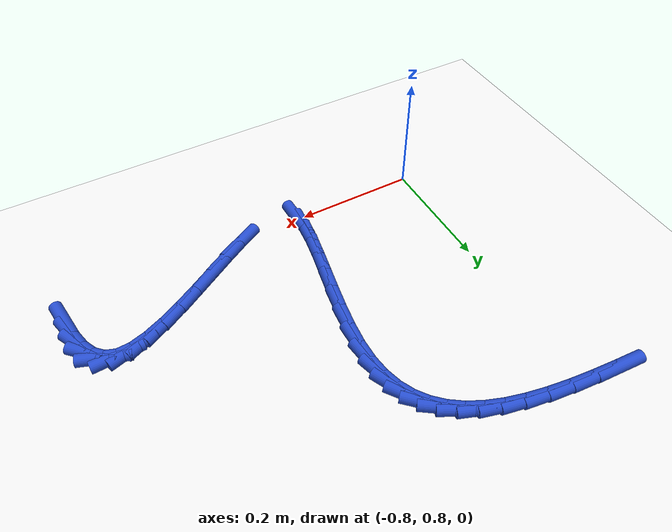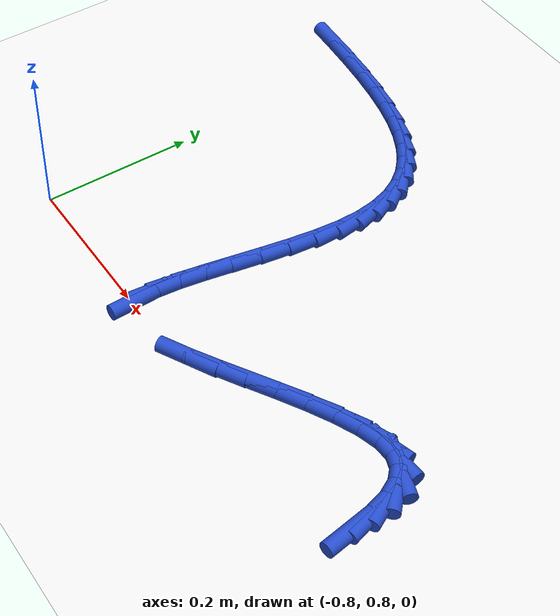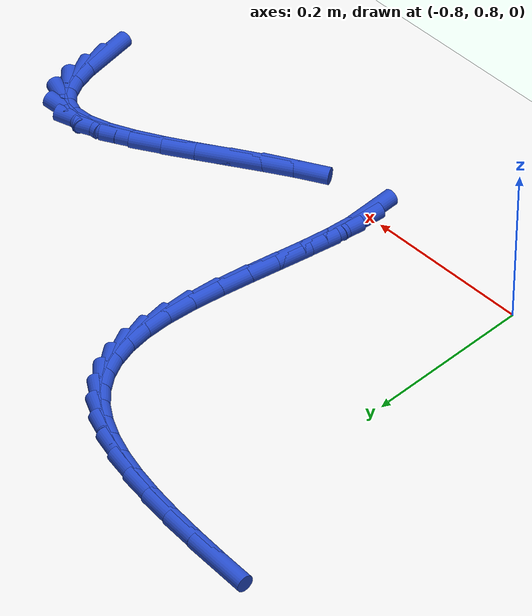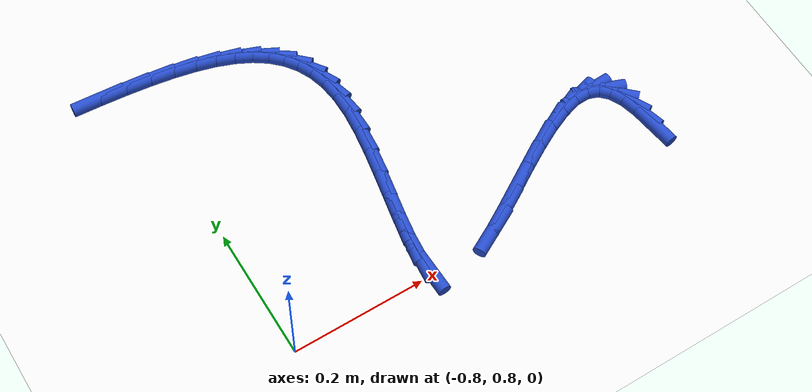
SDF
<sdf version="1.6">
 <world name="default">
  <model name="ground_plane">
   <static>1</static>
   <link name="link">
    <collision name="collision">
     <geometry><plane><normal>0 0 1</normal><size>100 100</size></plane></geometry>
     <surface><friction><ode><mu>100</mu><mu2>50</mu2></ode></friction></surface>
    </collision>
    <visual name="visual">
     <cast_shadows>0</cast_shadows>
     <geometry><plane><normal>0 0 1</normal><size>100 100</size></plane></geometry>
     <material>
      <script><uri>file://media/materials/scripts/gazebo.material</uri><name>Gazebo/WhiteGlow</name></script>
     </material>
    </visual>
   </link>
  </model>
  <model name="line">
   <link name="link_27">
    <pose>-0.18924707693657783 0.8349842434299994 0.01 0 1.57 -1.4235620301760807</pose>
    <collision name="collision">
     <geometry><cylinder><radius>0.01</radius><length>0.08</length></cylinder></geometry>
    </collision>
    <visual name="visual">
     <material>
      <script><name>Gazebo/Blue</name><uri>file://media/materials/scripts/gazebo.material</uri></script>
     </material>
     <geometry><cylinder><radius>0.01</radius><length>0.08</length></cylinder></geometry>
    </visual>
   </link>
   <link name="link_28">
    <pose>-0.19346652162865705 0.8634348898714073 0.01 0 1.57 -1.300588010641003</pose>
    <collision name="collision">
     <geometry><cylinder><radius>0.01</radius><length>0.08</length></cylinder></geometry>
    </collision>
    <visual name="visual">
     <material>
      <script><name>Gazebo/Blue</name><uri>file://media/materials/scripts/gazebo.material</uri></script>
     </material>
     <geometry><cylinder><radius>0.01</radius><length>0.08</length></cylinder></geometry>
    </visual>
   </link>
   <link name="link_29">
    <pose>-0.20012248898599844 0.8874651779108225 0.01 0 1.57 -1.0983401773954276</pose>
    <collision name="collision">
     <geometry><cylinder><radius>0.01</radius><length>0.08</length></cylinder></geometry>
    </collision>
    <visual name="visual">
     <material>
      <script><name>Gazebo/Blue</name><uri>file://media/materials/scripts/gazebo.material</uri></script>
     </material>
     <geometry><cylinder><radius>0.01</radius><length>0.08</length></cylinder></geometry>
    </visual>
   </link>
   <link name="link_30">
    <pose>-0.20976472294219184 0.906332317106625 0.01 0 1.57 -0.7770950186602225</pose>
    <collision name="collision">
     <geometry><cylinder><radius>0.01</radius><length>0.08</length></cylinder></geometry>
    </collision>
    <visual name="visual">
     <material>
      <script><name>Gazebo/Blue</name><uri>file://media/materials/scripts/gazebo.material</uri></script>
     </material>
     <geometry><cylinder><radius>0.01</radius><length>0.08</length></cylinder></geometry>
    </visual>
   </link>
   <link name="link_31">
    <pose>-0.2229429674308274 0.9192935170171959 0.01 0 1.57 -0.35054264638446914</pose>
    <collision name="collision">
     <geometry><cylinder><radius>0.01</radius><length>0.08</length></cylinder></geometry>
    </collision>
    <visual name="visual">
     <material>
      <script><name>Gazebo/Blue</name><uri>file://media/materials/scripts/gazebo.material</uri></script>
     </material>
     <geometry><cylinder><radius>0.01</radius><length>0.08</length></cylinder></geometry>
    </visual>
   </link>
   <link name="link_32">
    <pose>-0.24020696638549516 0.9256059872009157 0.01 0 1.57 0.042958525054722085</pose>
    <collision name="collision">
     <geometry><cylinder><radius>0.01</radius><length>0.08</length></cylinder></geometry>
    </collision>
    <visual name="visual">
     <material>
      <script><name>Gazebo/Blue</name><uri>file://media/materials/scripts/gazebo.material</uri></script>
     </material>
     <geometry><cylinder><radius>0.01</radius><length>0.08</length></cylinder></geometry>
    </visual>
   </link>
   <link name="link_33">
    <pose>-0.2620073682031355 0.9246688975763395 0.01 0 1.57 0.2822022993107532</pose>
    <collision name="collision">
     <geometry><cylinder><radius>0.01</radius><length>0.08</length></cylinder></geometry>
    </collision>
    <visual name="visual">
     <material>
      <script><name>Gazebo/Blue</name><uri>file://media/materials/scripts/gazebo.material</uri></script>
     </material>
     <geometry><cylinder><radius>0.01</radius><length>0.08</length></cylinder></geometry>
    </visual>
   </link>
   <link name="link_34">
    <pose>-0.28790150717281876 0.9171611446449733 0.01 0 1.57 0.4124817217138133</pose>
    <collision name="collision">
     <geometry><cylinder><radius>0.01</radius><length>0.08</length></cylinder></geometry>
    </collision>
    <visual name="visual">
     <material>
      <script><name>Gazebo/Blue</name><uri>file://media/materials/scripts/gazebo.material</uri></script>
     </material>
     <geometry><cylinder><radius>0.01</radius><length>0.08</length></cylinder></geometry>
    </visual>
   </link>
   <link name="link_35">
    <pose>-0.3169733582470942 0.9044397408374186 0.01 0 1.57 0.48654483667678783</pose>
    <collision name="collision">
     <geometry><cylinder><radius>0.01</radius><length>0.08</length></cylinder></geometry>
    </collision>
    <visual name="visual">
     <material>
      <script><name>Gazebo/Blue</name><uri>file://media/materials/scripts/gazebo.material</uri></script>
     </material>
     <geometry><cylinder><radius>0.01</radius><length>0.08</length></cylinder></geometry>
    </visual>
   </link>
   <link name="link_36">
    <pose>-0.34830256632770784 0.8878679016444005 0.01 0 1.57 0.5281605512984616</pose>
    <collision name="collision">
     <geometry><cylinder><radius>0.01</radius><length>0.08</length></cylinder></geometry>
    </collision>
    <visual name="visual">
     <material>
      <script><name>Gazebo/Blue</name><uri>file://media/materials/scripts/gazebo.material</uri></script>
     </material>
     <geometry><cylinder><radius>0.01</radius><length>0.08</length></cylinder></geometry>
    </visual>
   </link>
   <link name="link_37">
    <pose>-0.3809687763164051 0.868808842556643 0.01 0 1.57 0.5477955456250819</pose>
    <collision name="collision">
     <geometry><cylinder><radius>0.01</radius><length>0.08</length></cylinder></geometry>
    </collision>
    <visual name="visual">
     <material>
      <script><name>Gazebo/Blue</name><uri>file://media/materials/scripts/gazebo.material</uri></script>
     </material>
     <geometry><cylinder><radius>0.01</radius><length>0.08</length></cylinder></geometry>
    </visual>
   </link>
   <link name="link_38">
    <pose>-0.41405163311493126 0.8486257790648706 0.01 0 1.57 0.5493172159844522</pose>
    <collision name="collision">
     <geometry><cylinder><radius>0.01</radius><length>0.08</length></cylinder></geometry>
    </collision>
    <visual name="visual">
     <material>
      <script><name>Gazebo/Blue</name><uri>file://media/materials/scripts/gazebo.material</uri></script>
     </material>
     <geometry><cylinder><radius>0.01</radius><length>0.08</length></cylinder></geometry>
    </visual>
   </link>
   <link name="link_39">
    <pose>-0.44663078162503245 0.8286819266598072 0.01 0 1.57 0.5320794246308768</pose>
    <collision name="collision">
     <geometry><cylinder><radius>0.01</radius><length>0.08</length></cylinder></geometry>
    </collision>
    <visual name="visual">
     <material>
      <script><name>Gazebo/Blue</name><uri>file://media/materials/scripts/gazebo.material</uri></script>
     </material>
     <geometry><cylinder><radius>0.01</radius><length>0.08</length></cylinder></geometry>
    </visual>
   </link>
   <link name="link_40">
    <pose>-0.47778586674845436 0.8103405008321778 0.01 0 1.57 0.4902300792805051</pose>
    <collision name="collision">
     <geometry><cylinder><radius>0.01</radius><length>0.08</length></cylinder></geometry>
    </collision>
    <visual name="visual">
     <material>
      <script><name>Gazebo/Blue</name><uri>file://media/materials/scripts/gazebo.material</uri></script>
     </material>
     <geometry><cylinder><radius>0.01</radius><length>0.08</length></cylinder></geometry>
    </visual>
   </link>
   <link name="link_46">
    <pose>-0.5852737642220837 0.8075474567881864 0.01 0 1.57 -1.540918213273077</pose>
    <collision name="collision">
     <geometry><cylinder><radius>0.01</radius><length>0.08</length></cylinder></geometry>
    </collision>
    <visual name="visual">
     <material>
      <script><name>Gazebo/Blue</name><uri>file://media/materials/scripts/gazebo.material</uri></script>
     </material>
     <geometry><cylinder><radius>0.01</radius><length>0.08</length></cylinder></geometry>
    </visual>
   </link>
   <link name="link_47">
    <pose>-0.5859854558578569 0.8313602000708465 0.01 0 1.57 1.477697612081155</pose>
    <collision name="collision">
     <geometry><cylinder><radius>0.01</radius><length>0.08</length></cylinder></geometry>
    </collision>
    <visual name="visual">
     <material>
      <script><name>Gazebo/Blue</name><uri>file://media/materials/scripts/gazebo.material</uri></script>
     </material>
     <geometry><cylinder><radius>0.01</radius><length>0.08</length></cylinder></geometry>
    </visual>
   </link>
   <link name="link_48">
    <pose>-0.5832789462277708 0.8603475569387273 0.01 0 1.57 1.415338212089694</pose>
    <collision name="collision">
     <geometry><cylinder><radius>0.01</radius><length>0.08</length></cylinder></geometry>
    </collision>
    <visual name="visual">
     <material>
      <script><name>Gazebo/Blue</name><uri>file://media/materials/scripts/gazebo.material</uri></script>
     </material>
     <geometry><cylinder><radius>0.01</radius><length>0.08</length></cylinder></geometry>
    </visual>
   </link>
   <link name="link_49">
    <pose>-0.5781137965364982 0.8933048161692537 0.01 0 1.57 1.386360712986718</pose>
    <collision name="collision">
     <geometry><cylinder><radius>0.01</radius><length>0.08</length></cylinder></geometry>
    </collision>
    <visual name="visual">
     <material>
      <script><name>Gazebo/Blue</name><uri>file://media/materials/scripts/gazebo.material</uri></script>
     </material>
     <geometry><cylinder><radius>0.01</radius><length>0.08</length></cylinder></geometry>
    </visual>
   </link>
   <link name="link_50">
    <pose>-0.5714495679887123 0.9290272665398503 0.01 0 1.57 1.3799300086938708</pose>
    <collision name="collision">
     <geometry><cylinder><radius>0.01</radius><length>0.08</length></cylinder></geometry>
    </collision>
    <visual name="visual">
     <material>
      <script><name>Gazebo/Blue</name><uri>file://media/materials/scripts/gazebo.material</uri></script>
     </material>
     <geometry><cylinder><radius>0.01</radius><length>0.08</length></cylinder></geometry>
    </visual>
   </link>
   <link name="link_51">
    <pose>-0.5642458217890863 0.9663101968279415 0.01 0 1.57 1.3924785588561355</pose>
    <collision name="collision">
     <geometry><cylinder><radius>0.01</radius><length>0.08</length></cylinder></geometry>
    </collision>
    <visual name="visual">
     <material>
      <script><name>Gazebo/Blue</name><uri>file://media/materials/scripts/gazebo.material</uri></script>
     </material>
     <geometry><cylinder><radius>0.01</radius><length>0.08</length></cylinder></geometry>
    </visual>
   </link>
   <link name="link_52">
    <pose>-0.5574621191422929 1.0039488958109524 0.01 0 1.57 1.4249479775227054</pose>
    <collision name="collision">
     <geometry><cylinder><radius>0.01</radius><length>0.08</length></cylinder></geometry>
    </collision>
    <visual name="visual">
     <material>
      <script><name>Gazebo/Blue</name><uri>file://media/materials/scripts/gazebo.material</uri></script>
     </material>
     <geometry><cylinder><radius>0.01</radius><length>0.08</length></cylinder></geometry>
    </visual>
   </link>
   <link name="link_53">
    <pose>-0.5520580212530052 1.0407386522663071 0.01 0 1.57 1.4827894763573972</pose>
    <collision name="collision">
     <geometry><cylinder><radius>0.01</radius><length>0.08</length></cylinder></geometry>
    </collision>
    <visual name="visual">
     <material>
      <script><name>Gazebo/Blue</name><uri>file://media/materials/scripts/gazebo.material</uri></script>
     </material>
     <geometry><cylinder><radius>0.01</radius><length>0.08</length></cylinder></geometry>
    </visual>
   </link>
   <link name="link_54">
    <pose>-0.5489930893258962 1.0754747549714303 0.01 0 1.57 -1.565199393456655</pose>
    <collision name="collision">
     <geometry><cylinder><radius>0.01</radius><length>0.08</length></cylinder></geometry>
    </collision>
    <visual name="visual">
     <material>
      <script><name>Gazebo/Blue</name><uri>file://media/materials/scripts/gazebo.material</uri></script>
     </material>
     <geometry><cylinder><radius>0.01</radius><length>0.08</length></cylinder></geometry>
    </visual>
   </link>
   <link name="link_55">
    <pose>-0.5491697137560657 1.107031783651125 0.01 0 1.57 -1.4392343606792386</pose>
    <collision name="collision">
     <geometry><cylinder><radius>0.01</radius><length>0.08</length></cylinder></geometry>
    </collision>
    <visual name="visual">
     <material>
      <script><name>Gazebo/Blue</name><uri>file://media/materials/scripts/gazebo.material</uri></script>
     </material>
     <geometry><cylinder><radius>0.01</radius><length>0.08</length></cylinder></geometry>
    </visual>
   </link>
   <link name="link_56">
    <pose>-0.5528867118132508 1.1351214215324674 0.01 0 1.57 -1.2888583824309638</pose>
    <collision name="collision">
     <geometry><cylinder><radius>0.01</radius><length>0.08</length></cylinder></geometry>
    </collision>
    <visual name="visual">
     <material>
      <script><name>Gazebo/Blue</name><uri>file://media/materials/scripts/gazebo.material</uri></script>
     </material>
     <geometry><cylinder><radius>0.01</radius><length>0.08</length></cylinder></geometry>
    </visual>
   </link>
   <link name="link_57">
    <pose>-0.5600806496020614 1.1599577627456865 0.01 0 1.57 -1.1181966708477344</pose>
    <collision name="collision">
     <geometry><cylinder><radius>0.01</radius><length>0.08</length></cylinder></geometry>
    </collision>
    <visual name="visual">
     <material>
      <script><name>Gazebo/Blue</name><uri>file://media/materials/scripts/gazebo.material</uri></script>
     </material>
     <geometry><cylinder><radius>0.01</radius><length>0.08</length></cylinder></geometry>
    </visual>
   </link>
   <link name="link_58">
    <pose>-0.5706831661540217 1.1817617348434455 0.01 0 1.57 -0.9375382500278301</pose>
    <collision name="collision">
     <geometry><cylinder><radius>0.01</radius><length>0.08</length></cylinder></geometry>
    </collision>
    <visual name="visual">
     <material>
      <script><name>Gazebo/Blue</name><uri>file://media/materials/scripts/gazebo.material</uri></script>
     </material>
     <geometry><cylinder><radius>0.01</radius><length>0.08</length></cylinder></geometry>
    </visual>
   </link>
   <link name="link_59">
    <pose>-0.584625900500656 1.2007542653784071 0.01 0 1.57 -0.7612310477101222</pose>
    <collision name="collision">
     <geometry><cylinder><radius>0.01</radius><length>0.08</length></cylinder></geometry>
    </collision>
    <visual name="visual">
     <material>
      <script><name>Gazebo/Blue</name><uri>file://media/materials/scripts/gazebo.material</uri></script>
     </material>
     <geometry><cylinder><radius>0.01</radius><length>0.08</length></cylinder></geometry>
    </visual>
   </link>
   <link name="link_60">
    <pose>-0.6018404916734886 1.2171562819032347 0.01 0 1.57 -0.6021208833909827</pose>
    <collision name="collision">
     <geometry><cylinder><radius>0.01</radius><length>0.08</length></cylinder></geometry>
    </collision>
    <visual name="visual">
     <material>
      <script><name>Gazebo/Blue</name><uri>file://media/materials/scripts/gazebo.material</uri></script>
     </material>
     <geometry><cylinder><radius>0.01</radius><length>0.08</length></cylinder></geometry>
    </visual>
   </link>
   <link name="link_61">
    <pose>-0.6222585787040439 1.2311887119705918 0.01 0 1.57 -0.46728074480648657</pose>
    <collision name="collision">
     <geometry><cylinder><radius>0.01</radius><length>0.08</length></cylinder></geometry>
    </collision>
    <visual name="visual">
     <material>
      <script><name>Gazebo/Blue</name><uri>file://media/materials/scripts/gazebo.material</uri></script>
     </material>
     <geometry><cylinder><radius>0.01</radius><length>0.08</length></cylinder></geometry>
    </visual>
   </link>
   <link name="link_62">
    <pose>-0.6458118006238462 1.2430724831331412 0.01 0 1.57 -0.3578989878049125</pose>
    <collision name="collision">
     <geometry><cylinder><radius>0.01</radius><length>0.08</length></cylinder></geometry>
    </collision>
    <visual name="visual">
     <material>
      <script><name>Gazebo/Blue</name><uri>file://media/materials/scripts/gazebo.material</uri></script>
     </material>
     <geometry><cylinder><radius>0.01</radius><length>0.08</length></cylinder></geometry>
    </visual>
   </link>
   <link name="link_63">
    <pose>-0.67243179646442 1.253028522943546 0.01 0 1.57 -0.27163316577395574</pose>
    <collision name="collision">
     <geometry><cylinder><radius>0.01</radius><length>0.08</length></cylinder></geometry>
    </collision>
    <visual name="visual">
     <material>
      <script><name>Gazebo/Blue</name><uri>file://media/materials/scripts/gazebo.material</uri></script>
     </material>
     <geometry><cylinder><radius>0.01</radius><length>0.08</length></cylinder></geometry>
    </visual>
   </link>
   <link name="link_64">
    <pose>-0.7020502052572891 1.2612777589544693 0.01 0 1.57 -0.2048779905038701</pose>
    <collision name="collision">
     <geometry><cylinder><radius>0.01</radius><length>0.08</length></cylinder></geometry>
    </collision>
    <visual name="visual">
     <material>
      <script><name>Gazebo/Blue</name><uri>file://media/materials/scripts/gazebo.material</uri></script>
     </material>
     <geometry><cylinder><radius>0.01</radius><length>0.08</length></cylinder></geometry>
    </visual>
   </link>
   <link name="link_65">
    <pose>-0.7345986660339785 1.268041118718575 0.01 0 1.57 -0.15404758774661984</pose>
    <collision name="collision">
     <geometry><cylinder><radius>0.01</radius><length>0.08</length></cylinder></geometry>
    </collision>
    <visual name="visual">
     <material>
      <script><name>Gazebo/Blue</name><uri>file://media/materials/scripts/gazebo.material</uri></script>
     </material>
     <geometry><cylinder><radius>0.01</radius><length>0.08</length></cylinder></geometry>
    </visual>
   </link>
   <link name="link_66">
    <pose>-0.7700088178260117 1.273539529788525 0.01 0 1.57 -0.1160723414007952</pose>
    <collision name="collision">
     <geometry><cylinder><radius>0.01</radius><length>0.08</length></cylinder></geometry>
    </collision>
    <visual name="visual">
     <material>
      <script><name>Gazebo/Blue</name><uri>file://media/materials/scripts/gazebo.material</uri></script>
     </material>
     <geometry><cylinder><radius>0.01</radius><length>0.08</length></cylinder></geometry>
    </visual>
   </link>
   <link name="link_67">
    <pose>-0.8082122996649135 1.2779939197169834 0.01 0 1.57 -0.08849132469356645</pose>
    <collision name="collision">
     <geometry><cylinder><radius>0.01</radius><length>0.08</length></cylinder></geometry>
    </collision>
    <visual name="visual">
     <material>
      <script><name>Gazebo/Blue</name><uri>file://media/materials/scripts/gazebo.material</uri></script>
     </material>
     <geometry><cylinder><radius>0.01</radius><length>0.08</length></cylinder></geometry>
    </visual>
   </link>
   <link name="link_68">
    <pose>-0.8491407505822082 1.2816252160566133 0.01 0 1.57 -0.06938770773945288</pose>
    <collision name="collision">
     <geometry><cylinder><radius>0.01</radius><length>0.08</length></cylinder></geometry>
    </collision>
    <visual name="visual">
     <material>
      <script><name>Gazebo/Blue</name><uri>file://media/materials/scripts/gazebo.material</uri></script>
     </material>
     <geometry><cylinder><radius>0.01</radius><length>0.08</length></cylinder></geometry>
    </visual>
   </link>
  </model>
 </world>
</sdf>
